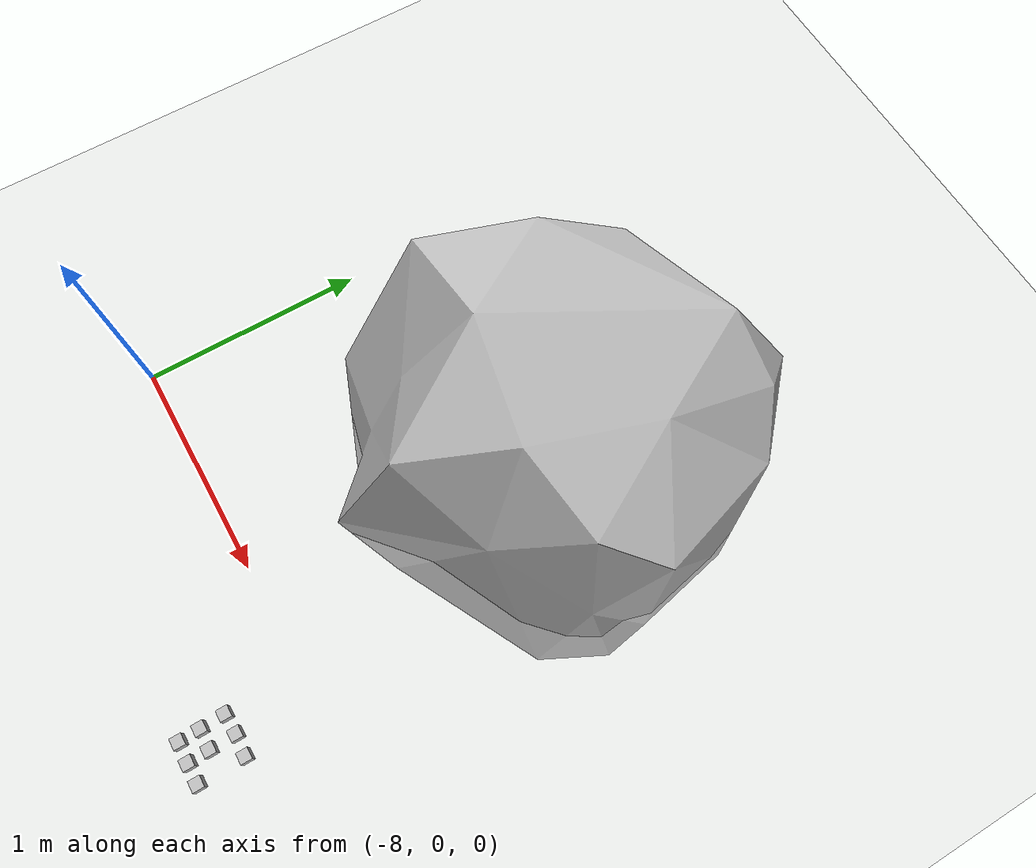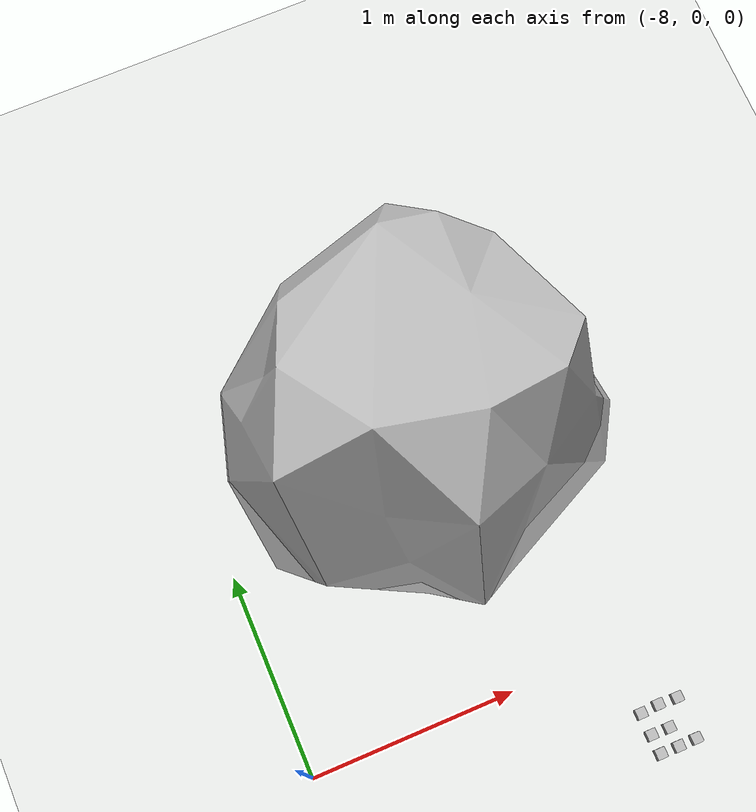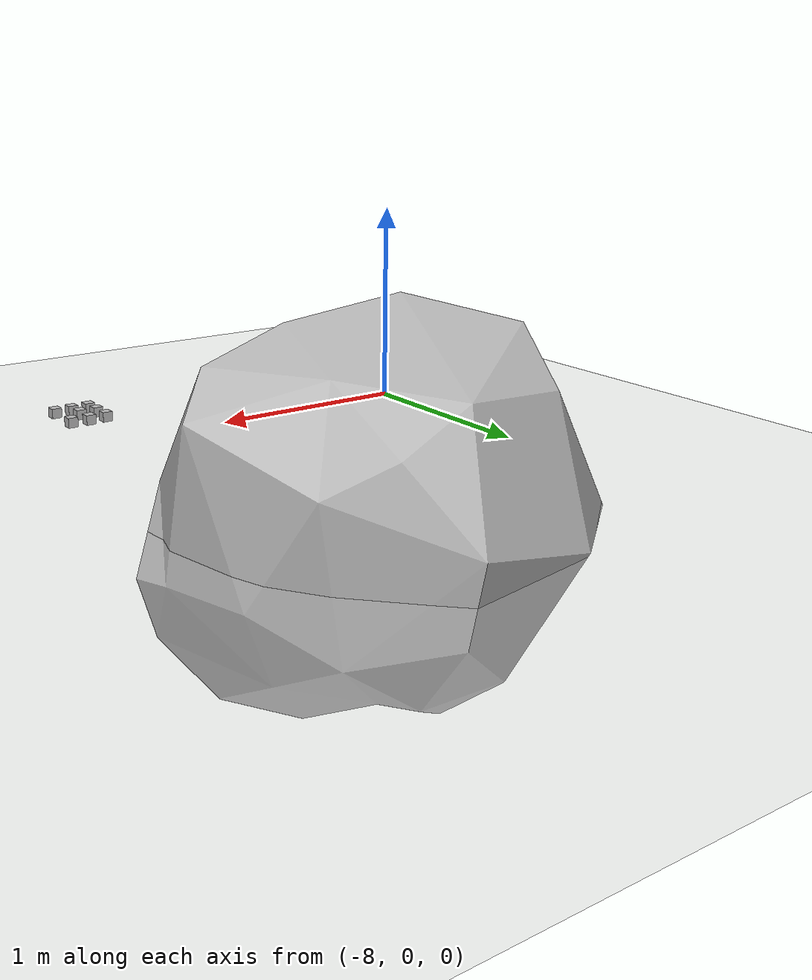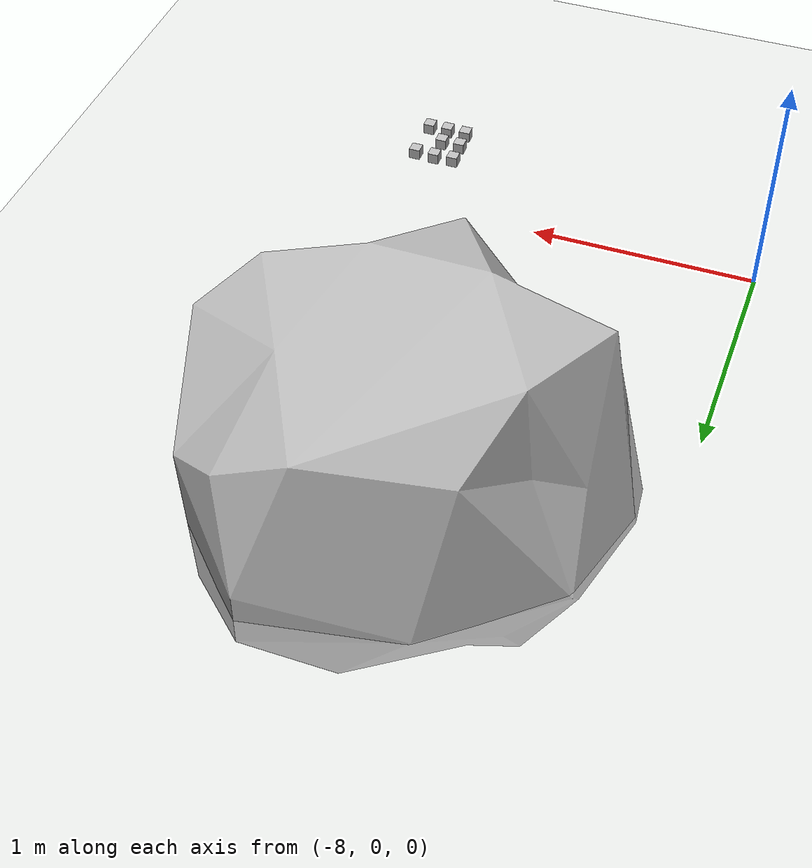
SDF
<sdf version="1.6">
 <world name="default">
  <model name="boulder1_1">
   <link name="link_0">
    <inertial>
     <mass>1</mass>
     <inertia>
      <ixx>0.166667</ixx>
      <ixy>0</ixy>
      <ixz>0</ixz>
      <iyy>0.166667</iyy>
      <iyz>0</iyz>
      <izz>0.166667</izz>
     </inertia>
    </inertial>
    <visual name="visual">
     <geometry><mesh><uri>model://boulder1/boulder1.dae</uri><scale>1 1 1</scale></mesh></geometry>
     <material>
      <lighting>1</lighting>
      <script><uri>model://boulder1</uri><name>boulder1/Diffuse</name></script>
     </material>
    </visual>
    <collision name="collision">
     <geometry><mesh><uri>model://boulder1/boulder1.dae</uri><scale>1 1 1</scale></mesh></geometry>
     <surface>
      <friction>
       <ode><mu>1</mu><mu2>1</mu2><fdir1>0 0 0</fdir1><slip1>0</slip1><slip2>0</slip2></ode>
       <torsional>
        <coefficient>1</coefficient>
        <patch_radius>0</patch_radius>
        <surface_radius>0</surface_radius>
        <use_patch_radius>1</use_patch_radius>
        <ode><slip>0</slip></ode>
       </torsional>
      </friction>
      <bounce><restitution_coefficient>0</restitution_coefficient><threshold>1e+06</threshold></bounce>
      <contact>
       <collide_without_contact>0</collide_without_contact>
       <collide_without_contact_bitmask>1</collide_without_contact_bitmask>
       <collide_bitmask>1</collide_bitmask>
       <ode>
        <soft_cfm>0</soft_cfm>
        <soft_erp>0.2</soft_erp>
        <kp>1e+13</kp>
        <kd>1</kd>
        <max_vel>0.01</max_vel>
        <min_depth>0</min_depth>
       </ode>
       <bullet>
        <split_impulse>1</split_impulse>
        <split_impulse_penetration_threshold>-0.01</split_impulse_penetration_threshold>
        <soft_cfm>0</soft_cfm>
        <soft_erp>0.2</soft_erp>
        <kp>1e+13</kp>
        <kd>1</kd>
       </bullet>
      </contact>
     </surface>
    </collision>
   </link>
   <static>1</static>
   <pose>-7.11751 1.92658 0 0 0 -2.76591</pose>
  </model>
  <model name="ground_plane">
   <static>1</static>
   <link name="link">
    <collision name="collision">
     <geometry><plane><normal>0 0 1</normal><size>100 100</size></plane></geometry>
     <surface><friction><ode><mu>100</mu><mu2>50</mu2></ode></friction></surface>
    </collision>
    <visual name="visual">
     <cast_shadows>0</cast_shadows>
     <geometry><plane><normal>0 0 1</normal><size>100 100</size></plane></geometry>
     <material>
      <script><uri>file://media/materials/scripts/gazebo.material</uri><name>Gazebo/Grey</name></script>
     </material>
    </visual>
   </link>
  </model>
  <model name="at0">
   <static>0</static>
   <link name="link">
    <inertial>
     <mass>0.01</mass>
     <inertia><ixx>4e-05</ixx><ixy>0</ixy><ixz>0</ixz><iyy>4e-05</iyy><iyz>0</iyz><izz>4e-05</izz></inertia>
    </inertial>
    <visual name="visual">
     <geometry><box><size>0.05 0.05 0.05</size></box></geometry>
     <material>
      <script>
       <uri>model://at0/materials/scripts</uri>
       <uri>model://at0/materials/textures</uri>
       <name>at0/Diffuse</name>
      </script>
     </material>
    </visual>
    <collision name="collision">
     <geometry><box><size>0.05 0.05 0.05</size></box></geometry>
     <surface><friction><ode><mu>0.8</mu><mu2>0.7</mu2></ode></friction></surface>
    </collision>
   </link>
   <pose>-6.40949 -0.430538 0.045 0 -0 0</pose>
  </model>
  <model name="at0_0">
   <static>0</static>
   <link name="link">
    <inertial>
     <mass>0.01</mass>
     <inertia><ixx>4e-05</ixx><ixy>0</ixy><ixz>0</ixz><iyy>4e-05</iyy><iyz>0</iyz><izz>4e-05</izz></inertia>
    </inertial>
    <visual name="visual">
     <geometry><box><size>0.05 0.05 0.05</size></box></geometry>
     <material>
      <script>
       <uri>model://at0/materials/scripts</uri>
       <uri>model://at0/materials/textures</uri>
       <name>at0/Diffuse</name>
      </script>
     </material>
    </visual>
    <collision name="collision">
     <geometry><box><size>0.05 0.05 0.05</size></box></geometry>
     <surface><friction><ode><mu>0.8</mu><mu2>0.7</mu2></ode></friction></surface>
    </collision>
   </link>
   <pose>-6.40589 -0.523574 0.045 0 -0 0</pose>
  </model>
  <model name="at0_1">
   <static>0</static>
   <link name="link">
    <inertial>
     <mass>0.01</mass>
     <inertia><ixx>4e-05</ixx><ixy>0</ixy><ixz>0</ixz><iyy>4e-05</iyy><iyz>0</iyz><izz>4e-05</izz></inertia>
    </inertial>
    <visual name="visual">
     <geometry><box><size>0.05 0.05 0.05</size></box></geometry>
     <material>
      <script>
       <uri>model://at0/materials/scripts</uri>
       <uri>model://at0/materials/textures</uri>
       <name>at0/Diffuse</name>
      </script>
     </material>
    </visual>
    <collision name="collision">
     <geometry><box><size>0.05 0.05 0.05</size></box></geometry>
     <surface><friction><ode><mu>0.8</mu><mu2>0.7</mu2></ode></friction></surface>
    </collision>
   </link>
   <pose>-6.49581 -0.5221 0.045 0 -0 0</pose>
  </model>
  <model name="at0_2">
   <static>0</static>
   <link name="link">
    <inertial>
     <mass>0.01</mass>
     <inertia><ixx>4e-05</ixx><ixy>0</ixy><ixz>0</ixz><iyy>4e-05</iyy><iyz>0</iyz><izz>4e-05</izz></inertia>
    </inertial>
    <visual name="visual">
     <geometry><box><size>0.05 0.05 0.05</size></box></geometry>
     <material>
      <script>
       <uri>model://at0/materials/scripts</uri>
       <uri>model://at0/materials/textures</uri>
       <name>at0/Diffuse</name>
      </script>
     </material>
    </visual>
    <collision name="collision">
     <geometry><box><size>0.05 0.05 0.05</size></box></geometry>
     <surface><friction><ode><mu>0.8</mu><mu2>0.7</mu2></ode></friction></surface>
    </collision>
   </link>
   <pose>-6.31735 -0.522905 0.045 0 -0 0</pose>
  </model>
  <model name="at0_3">
   <static>0</static>
   <link name="link">
    <inertial>
     <mass>0.01</mass>
     <inertia><ixx>4e-05</ixx><ixy>0</ixy><ixz>0</ixz><iyy>4e-05</iyy><iyz>0</iyz><izz>4e-05</izz></inertia>
    </inertial>
    <visual name="visual">
     <geometry><box><size>0.05 0.05 0.05</size></box></geometry>
     <material>
      <script>
       <uri>model://at0/materials/scripts</uri>
       <uri>model://at0/materials/textures</uri>
       <name>at0/Diffuse</name>
      </script>
     </material>
    </visual>
    <collision name="collision">
     <geometry><box><size>0.05 0.05 0.05</size></box></geometry>
     <surface><friction><ode><mu>0.8</mu><mu2>0.7</mu2></ode></friction></surface>
    </collision>
   </link>
   <pose>-6.49905 -0.428971 0.045 0 -0 0</pose>
  </model>
  <model name="at0_5">
   <static>0</static>
   <link name="link">
    <inertial>
     <mass>0.01</mass>
     <inertia><ixx>4e-05</ixx><ixy>0</ixy><ixz>0</ixz><iyy>4e-05</iyy><iyz>0</iyz><izz>4e-05</izz></inertia>
    </inertial>
    <visual name="visual">
     <geometry><box><size>0.05 0.05 0.05</size></box></geometry>
     <material>
      <script>
       <uri>model://at0/materials/scripts</uri>
       <uri>model://at0/materials/textures</uri>
       <name>at0/Diffuse</name>
      </script>
     </material>
    </visual>
    <collision name="collision">
     <geometry><box><size>0.05 0.05 0.05</size></box></geometry>
     <surface><friction><ode><mu>0.8</mu><mu2>0.7</mu2></ode></friction></surface>
    </collision>
   </link>
   <pose>-6.50173 -0.322517 0.045 0 -0 0</pose>
  </model>
  <model name="at0_6">
   <static>0</static>
   <link name="link">
    <inertial>
     <mass>0.01</mass>
     <inertia><ixx>4e-05</ixx><ixy>0</ixy><ixz>0</ixz><iyy>4e-05</iyy><iyz>0</iyz><izz>4e-05</izz></inertia>
    </inertial>
    <visual name="visual">
     <geometry><box><size>0.05 0.05 0.05</size></box></geometry>
     <material>
      <script>
       <uri>model://at0/materials/scripts</uri>
       <uri>model://at0/materials/textures</uri>
       <name>at0/Diffuse</name>
      </script>
     </material>
    </visual>
    <collision name="collision">
     <geometry><box><size>0.05 0.05 0.05</size></box></geometry>
     <surface><friction><ode><mu>0.8</mu><mu2>0.7</mu2></ode></friction></surface>
    </collision>
   </link>
   <pose>-6.41147 -0.316812 0.045 0 -0 0</pose>
  </model>
  <model name="at0_7">
   <static>0</static>
   <link name="link">
    <inertial>
     <mass>0.01</mass>
     <inertia><ixx>4e-05</ixx><ixy>0</ixy><ixz>0</ixz><iyy>4e-05</iyy><iyz>0</iyz><izz>4e-05</izz></inertia>
    </inertial>
    <visual name="visual">
     <geometry><box><size>0.05 0.05 0.05</size></box></geometry>
     <material>
      <script>
       <uri>model://at0/materials/scripts</uri>
       <uri>model://at0/materials/textures</uri>
       <name>at0/Diffuse</name>
      </script>
     </material>
    </visual>
    <collision name="collision">
     <geometry><box><size>0.05 0.05 0.05</size></box></geometry>
     <surface><friction><ode><mu>0.8</mu><mu2>0.7</mu2></ode></friction></surface>
    </collision>
   </link>
   <pose>-6.31812 -0.321464 0.045 0 -0 0</pose>
  </model>
 </world>
</sdf>
